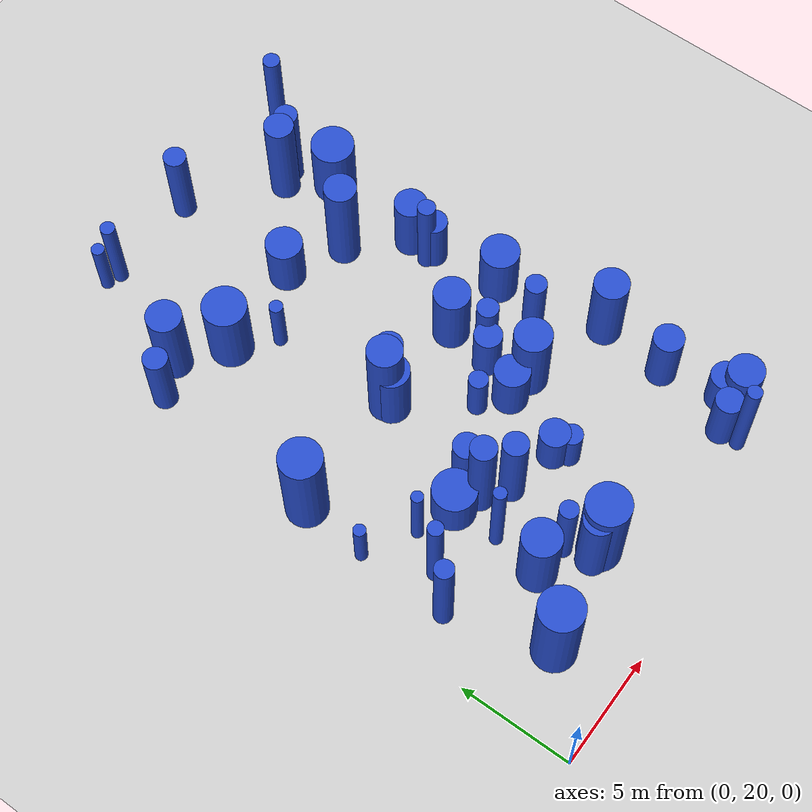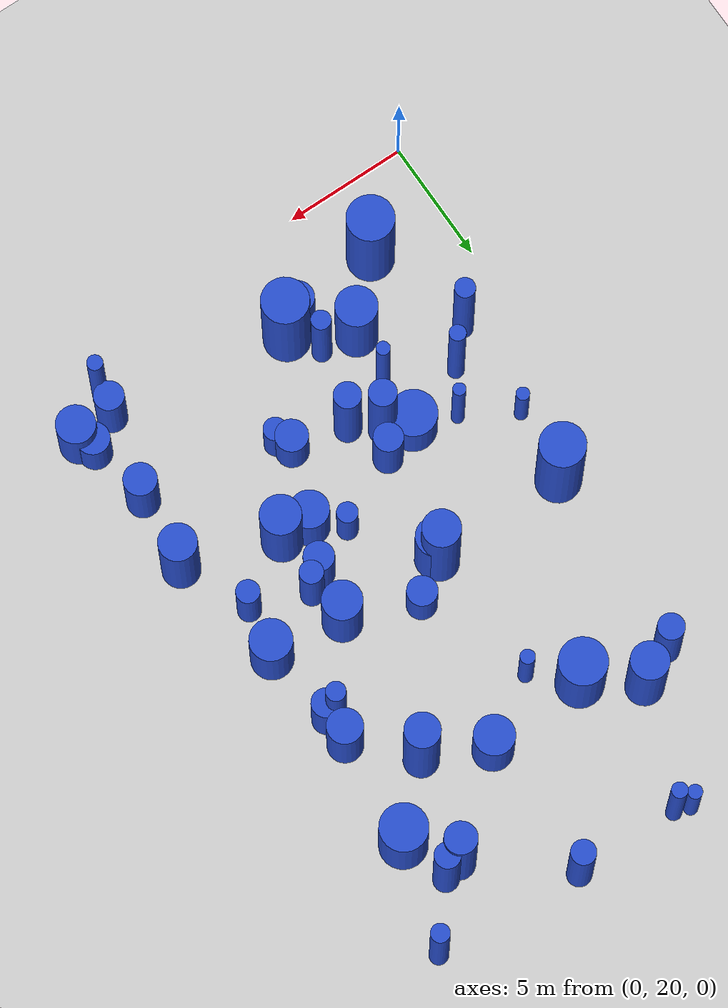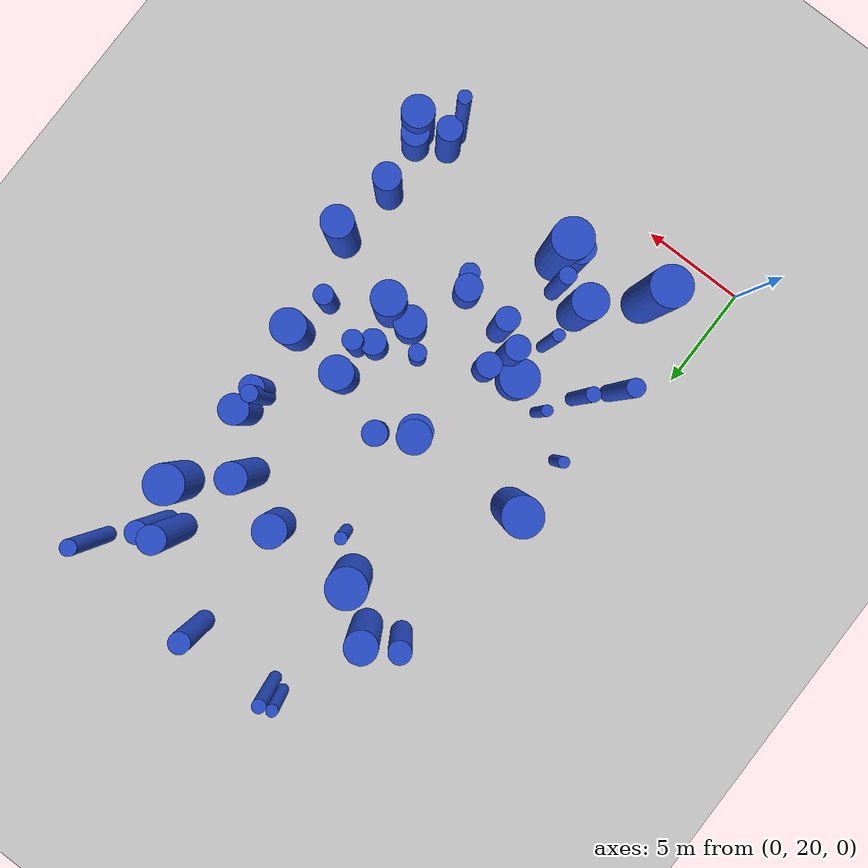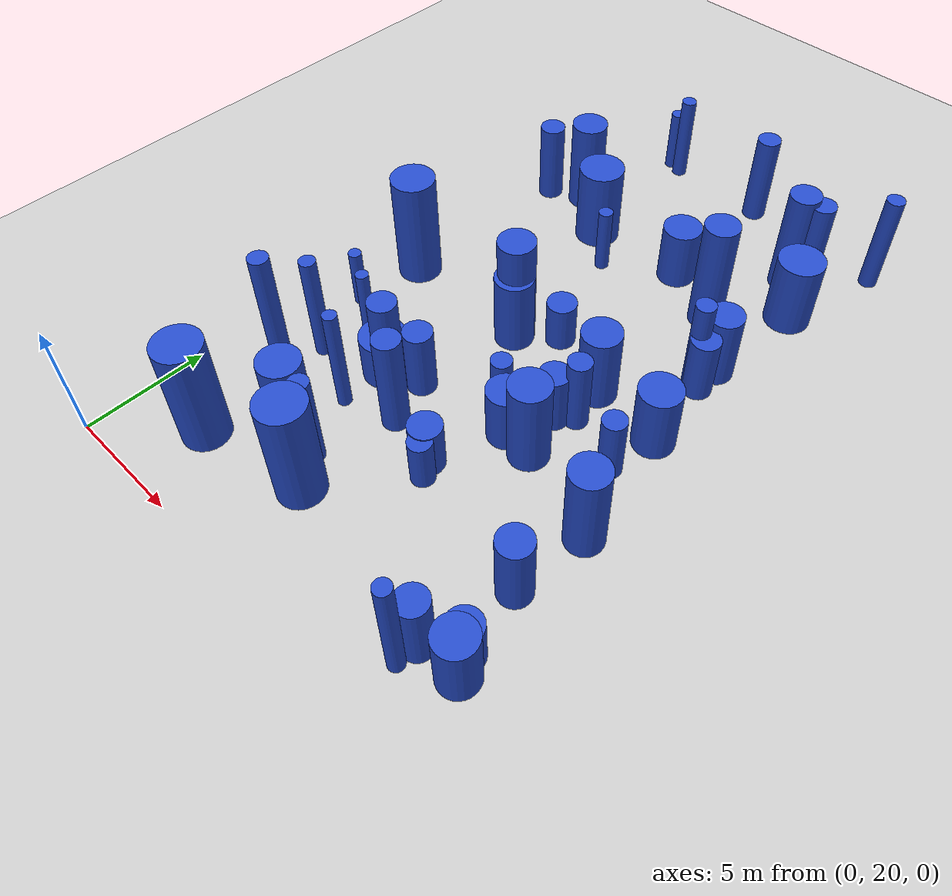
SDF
<sdf version="1.6">
 <world name="default">
  <model name="ground_plane">
   <static>1</static>
   <link name="link">
    <collision name="collision">
     <geometry><plane><normal>0 0 1</normal><size>100 100</size></plane></geometry>
     <surface><friction><ode><mu>100</mu><mu2>50</mu2></ode></friction></surface>
    </collision>
    <visual name="visual">
     <cast_shadows>0</cast_shadows>
     <geometry><plane><normal>0 0 1</normal><size>100 100</size></plane></geometry>
     <material>
      <script><uri>file://media/materials/scripts/gazebo.material</uri><name>Gazebo/Grey</name></script>
     </material>
    </visual>
   </link>
  </model>
  <model name="0">
   <static>0</static>
   <link name="link">
    <inertial>
     <mass>2</mass>
     <inertia><ixx>1.36996</ixx><ixy>0</ixy><ixz>0</ixz><iyy>1.36996</iyy><iyz>0</iyz><izz>0.08114</izz></inertia>
    </inertial>
    <collision name="collision">
     <geometry><cylinder><length>2.82424</length><radius>0.284851</radius></cylinder></geometry>
     <surface><contact><collide_without_contact>1</collide_without_contact></contact></surface>
    </collision>
    <visual name="visual">
     <geometry><cylinder><length>2.82424</length><radius>0.284851</radius></cylinder></geometry>
     <material>
      <script><uri>file://media/materials/scripts/gazebo.material</uri><name>Gazebo/Blue</name></script>
     </material>
    </visual>
    <gravity>0</gravity>
   </link>
   <pose>5.6814 47.6667 1.41212 0 -0 0</pose>
  </model>
  <model name="5">
   <static>0</static>
   <link name="link">
    <inertial>
     <mass>2</mass>
     <inertia><ixx>1.58752</ixx><ixy>0</ixy><ixz>0</ixz><iyy>1.58752</iyy><iyz>0</iyz><izz>0.355159</izz></inertia>
    </inertial>
    <collision name="collision">
     <geometry><cylinder><length>2.90855</length><radius>0.595952</radius></cylinder></geometry>
     <surface><contact><collide_without_contact>1</collide_without_contact></contact></surface>
    </collision>
    <visual name="visual">
     <geometry><cylinder><length>2.90855</length><radius>0.595952</radius></cylinder></geometry>
     <material>
      <script><uri>file://media/materials/scripts/gazebo.material</uri><name>Gazebo/Blue</name></script>
     </material>
    </visual>
    <gravity>0</gravity>
   </link>
   <pose>15.128 22.7537 1.45428 0 -0 0</pose>
  </model>
  <model name="8">
   <static>0</static>
   <link name="link">
    <inertial>
     <mass>2</mass>
     <inertia>
      <ixx>0.880956</ixx>
      <ixy>0</ixy>
      <ixz>0</ixz>
      <iyy>0.880956</iyy>
      <iyz>0</iyz>
      <izz>0.363118</izz>
     </inertia>
    </inertial>
    <collision name="collision">
     <geometry><cylinder><length>2.04851</length><radius>0.602593</radius></cylinder></geometry>
     <surface><contact><collide_without_contact>1</collide_without_contact></contact></surface>
    </collision>
    <visual name="visual">
     <geometry><cylinder><length>2.04851</length><radius>0.602593</radius></cylinder></geometry>
     <material>
      <script><uri>file://media/materials/scripts/gazebo.material</uri><name>Gazebo/Blue</name></script>
     </material>
    </visual>
    <gravity>0</gravity>
   </link>
   <pose>9.53747 35.5063 1.02425 0 -0 0</pose>
  </model>
  <model name="9">
   <static>0</static>
   <link name="link">
    <inertial>
     <mass>2</mass>
     <inertia>
      <ixx>2.25253</ixx>
      <ixy>0</ixy>
      <ixz>0</ixz>
      <iyy>2.25253</iyy>
      <iyz>0</iyz>
      <izz>0.0659071</izz>
     </inertia>
    </inertial>
    <collision name="collision">
     <geometry><cylinder><length>3.64931</length><radius>0.256724</radius></cylinder></geometry>
     <surface><contact><collide_without_contact>1</collide_without_contact></contact></surface>
    </collision>
    <visual name="visual">
     <geometry><cylinder><length>3.64931</length><radius>0.256724</radius></cylinder></geometry>
     <material>
      <script><uri>file://media/materials/scripts/gazebo.material</uri><name>Gazebo/Blue</name></script>
     </material>
    </visual>
    <gravity>0</gravity>
   </link>
   <pose>4.20875 30.1664 1.82465 0 -0 0</pose>
  </model>
  <model name="12">
   <static>0</static>
   <link name="link">
    <inertial>
     <mass>2</mass>
     <inertia>
      <ixx>0.906578</ixx>
      <ixy>0</ixy>
      <ixz>0</ixz>
      <iyy>0.906578</iyy>
      <iyz>0</iyz>
      <izz>0.435424</izz>
     </inertia>
    </inertial>
    <collision name="collision">
     <geometry><cylinder><length>2.03303</length><radius>0.659867</radius></cylinder></geometry>
     <surface><contact><collide_without_contact>1</collide_without_contact></contact></surface>
    </collision>
    <visual name="visual">
     <geometry><cylinder><length>2.03303</length><radius>0.659867</radius></cylinder></geometry>
     <material>
      <script><uri>file://media/materials/scripts/gazebo.material</uri><name>Gazebo/Blue</name></script>
     </material>
    </visual>
    <gravity>0</gravity>
   </link>
   <pose>16.4375 23.5707 1.01651 0 -0 0</pose>
  </model>
  <model name="13">
   <static>0</static>
   <link name="link">
    <inertial>
     <mass>2</mass>
     <inertia><ixx>1.12414</ixx><ixy>0</ixy><ixz>0</ixz><iyy>1.12414</iyy><iyz>0</iyz><izz>0.883734</izz></inertia>
    </inertial>
    <collision name="collision">
     <geometry><cylinder><length>2.02328</length><radius>0.940072</radius></cylinder></geometry>
     <surface><contact><collide_without_contact>1</collide_without_contact></contact></surface>
    </collision>
    <visual name="visual">
     <geometry><cylinder><length>2.02328</length><radius>0.940072</radius></cylinder></geometry>
     <material>
      <script><uri>file://media/materials/scripts/gazebo.material</uri><name>Gazebo/Blue</name></script>
     </material>
    </visual>
    <gravity>0</gravity>
   </link>
   <pose>5.86916 29.5655 1.01164 0 -0 0</pose>
  </model>
  <model name="14">
   <static>0</static>
   <link name="link">
    <inertial>
     <mass>2</mass>
     <inertia><ixx>3.20253</ixx><ixy>0</ixy><ixz>0</ixz><iyy>3.20253</iyy><iyz>0</iyz><izz>0.453423</izz></inertia>
    </inertial>
    <collision name="collision">
     <geometry><cylinder><length>4.22551</length><radius>0.673367</radius></cylinder></geometry>
     <surface><contact><collide_without_contact>1</collide_without_contact></contact></surface>
    </collision>
    <visual name="visual">
     <geometry><cylinder><length>4.22551</length><radius>0.673367</radius></cylinder></geometry>
     <material>
      <script><uri>file://media/materials/scripts/gazebo.material</uri><name>Gazebo/Blue</name></script>
     </material>
    </visual>
    <gravity>0</gravity>
   </link>
   <pose>7.31113 23.8893 2.11276 0 -0 0</pose>
  </model>
  <model name="24">
   <static>0</static>
   <link name="link">
    <inertial>
     <mass>2</mass>
     <inertia><ixx>2.24741</ixx><ixy>0</ixy><ixz>0</ixz><iyy>2.24741</iyy><iyz>0</iyz><izz>0.278521</izz></inertia>
    </inertial>
    <collision name="collision">
     <geometry><cylinder><length>3.55653</length><radius>0.527751</radius></cylinder></geometry>
     <surface><contact><collide_without_contact>1</collide_without_contact></contact></surface>
    </collision>
    <visual name="visual">
     <geometry><cylinder><length>3.55653</length><radius>0.527751</radius></cylinder></geometry>
     <material>
      <script><uri>file://media/materials/scripts/gazebo.material</uri><name>Gazebo/Blue</name></script>
     </material>
    </visual>
    <gravity>0</gravity>
   </link>
   <pose>2.92159 42.1563 1.77827 0 -0 0</pose>
  </model>
  <model name="26">
   <static>0</static>
   <link name="link">
    <inertial>
     <mass>2</mass>
     <inertia><ixx>1.52925</ixx><ixy>0</ixy><ixz>0</ixz><iyy>1.52925</iyy><iyz>0</iyz><izz>0.603809</izz></inertia>
    </inertial>
    <collision name="collision">
     <geometry><cylinder><length>2.71368</length><radius>0.777051</radius></cylinder></geometry>
     <surface><contact><collide_without_contact>1</collide_without_contact></contact></surface>
    </collision>
    <visual name="visual">
     <geometry><cylinder><length>2.71368</length><radius>0.777051</radius></cylinder></geometry>
     <material>
      <script><uri>file://media/materials/scripts/gazebo.material</uri><name>Gazebo/Blue</name></script>
     </material>
    </visual>
    <gravity>0</gravity>
   </link>
   <pose>16.7592 22.9378 1.35684 0 -0 0</pose>
  </model>
  <model name="30">
   <static>0</static>
   <link name="link">
    <inertial>
     <mass>2</mass>
     <inertia><ixx>2.75593</ixx><ixy>0</ixy><ixz>0</ixz><iyy>2.75593</iyy><iyz>0</iyz><izz>0.688056</izz></inertia>
    </inertial>
    <collision name="collision">
     <geometry><cylinder><length>3.80413</length><radius>0.829491</radius></cylinder></geometry>
     <surface><contact><collide_without_contact>1</collide_without_contact></contact></surface>
    </collision>
    <visual name="visual">
     <geometry><cylinder><length>3.80413</length><radius>0.829491</radius></cylinder></geometry>
     <material>
      <script><uri>file://media/materials/scripts/gazebo.material</uri><name>Gazebo/Blue</name></script>
     </material>
    </visual>
    <gravity>0</gravity>
   </link>
   <pose>5.5824 25.3243 1.90206 0 -0 0</pose>
  </model>
  <model name="31">
   <static>0</static>
   <link name="link">
    <inertial>
     <mass>2</mass>
     <inertia><ixx>3.2928</ixx><ixy>0</ixy><ixz>0</ixz><iyy>3.2928</iyy><iyz>0</iyz><izz>0.138663</izz></inertia>
    </inertial>
    <collision name="collision">
     <geometry><cylinder><length>4.39782</length><radius>0.372375</radius></cylinder></geometry>
     <surface><contact><collide_without_contact>1</collide_without_contact></contact></surface>
    </collision>
    <visual name="visual">
     <geometry><cylinder><length>4.39782</length><radius>0.372375</radius></cylinder></geometry>
     <material>
      <script><uri>file://media/materials/scripts/gazebo.material</uri><name>Gazebo/Blue</name></script>
     </material>
    </visual>
    <gravity>0</gravity>
   </link>
   <pose>16.6334 46.9755 2.19891 0 -0 0</pose>
  </model>
  <model name="41">
   <static>0</static>
   <link name="link">
    <inertial>
     <mass>2</mass>
     <inertia>
      <ixx>2.56622</ixx>
      <ixy>0</ixy>
      <ixz>0</ixz>
      <iyy>2.56622</iyy>
      <iyz>0</iyz>
      <izz>0.0997864</izz>
     </inertia>
    </inertial>
    <collision name="collision">
     <geometry><cylinder><length>3.88561</length><radius>0.31589</radius></cylinder></geometry>
     <surface><contact><collide_without_contact>1</collide_without_contact></contact></surface>
    </collision>
    <visual name="visual">
     <geometry><cylinder><length>3.88561</length><radius>0.31589</radius></cylinder></geometry>
     <material>
      <script><uri>file://media/materials/scripts/gazebo.material</uri><name>Gazebo/Blue</name></script>
     </material>
    </visual>
    <gravity>0</gravity>
   </link>
   <pose>6.3063 47.4544 1.9428 0 -0 0</pose>
  </model>
  <model name="42">
   <static>0</static>
   <link name="link">
    <inertial>
     <mass>2</mass>
     <inertia><ixx>1.89672</ixx><ixy>0</ixy><ixz>0</ixz><iyy>1.89672</iyy><iyz>0</iyz><izz>0.219729</izz></inertia>
    </inertial>
    <collision name="collision">
     <geometry><cylinder><length>3.27432</length><radius>0.468753</radius></cylinder></geometry>
     <surface><contact><collide_without_contact>1</collide_without_contact></contact></surface>
    </collision>
    <visual name="visual">
     <geometry><cylinder><length>3.27432</length><radius>0.468753</radius></cylinder></geometry>
     <material>
      <script><uri>file://media/materials/scripts/gazebo.material</uri><name>Gazebo/Blue</name></script>
     </material>
    </visual>
    <gravity>0</gravity>
   </link>
   <pose>12.7332 32.8428 1.63716 0 -0 0</pose>
  </model>
  <model name="49">
   <static>0</static>
   <link name="link">
    <inertial>
     <mass>2</mass>
     <inertia><ixx>2.81765</ixx><ixy>0</ixy><ixz>0</ixz><iyy>2.81765</iyy><iyz>0</iyz><izz>0.156137</izz></inertia>
    </inertial>
    <collision name="collision">
     <geometry><cylinder><length>4.05431</length><radius>0.395141</radius></cylinder></geometry>
     <surface><contact><collide_without_contact>1</collide_without_contact></contact></surface>
    </collision>
    <visual name="visual">
     <geometry><cylinder><length>4.05431</length><radius>0.395141</radius></cylinder></geometry>
     <material>
      <script><uri>file://media/materials/scripts/gazebo.material</uri><name>Gazebo/Blue</name></script>
     </material>
    </visual>
    <gravity>0</gravity>
   </link>
   <pose>7.03901 25.0928 2.02716 0 -0 0</pose>
  </model>
  <model name="62">
   <static>0</static>
   <link name="link">
    <inertial>
     <mass>2</mass>
     <inertia><ixx>2.09933</ixx><ixy>0</ixy><ixz>0</ixz><iyy>2.09933</iyy><iyz>0</iyz><izz>0.629499</izz></inertia>
    </inertial>
    <collision name="collision">
     <geometry><cylinder><length>3.27223</length><radius>0.79341</radius></cylinder></geometry>
     <surface><contact><collide_without_contact>1</collide_without_contact></contact></surface>
    </collision>
    <visual name="visual">
     <geometry><cylinder><length>3.27223</length><radius>0.79341</radius></cylinder></geometry>
     <material>
      <script><uri>file://media/materials/scripts/gazebo.material</uri><name>Gazebo/Blue</name></script>
     </material>
    </visual>
    <gravity>0</gravity>
   </link>
   <pose>8.11835 34.326 1.63611 0 -0 0</pose>
  </model>
  <model name="63">
   <static>0</static>
   <link name="link">
    <inertial>
     <mass>2</mass>
     <inertia><ixx>1.33081</ixx><ixy>0</ixy><ixz>0</ixz><iyy>1.33081</iyy><iyz>0</iyz><izz>0.586422</izz></inertia>
    </inertial>
    <collision name="collision">
     <geometry><cylinder><length>2.49512</length><radius>0.765782</radius></cylinder></geometry>
     <surface><contact><collide_without_contact>1</collide_without_contact></contact></surface>
    </collision>
    <visual name="visual">
     <geometry><cylinder><length>2.49512</length><radius>0.765782</radius></cylinder></geometry>
     <material>
      <script><uri>file://media/materials/scripts/gazebo.material</uri><name>Gazebo/Blue</name></script>
     </material>
    </visual>
    <gravity>0</gravity>
   </link>
   <pose>11.3127 30.6031 1.24756 0 -0 0</pose>
  </model>
  <model name="64">
   <static>0</static>
   <link name="link">
    <inertial>
     <mass>2</mass>
     <inertia><ixx>3.78361</ixx><ixy>0</ixy><ixz>0</ixz><iyy>3.78361</iyy><iyz>0</iyz><izz>0.408646</izz></inertia>
    </inertial>
    <collision name="collision">
     <geometry><cylinder><length>4.63419</length><radius>0.639254</radius></cylinder></geometry>
     <surface><contact><collide_without_contact>1</collide_without_contact></contact></surface>
    </collision>
    <visual name="visual">
     <geometry><cylinder><length>4.63419</length><radius>0.639254</radius></cylinder></geometry>
     <material>
      <script><uri>file://media/materials/scripts/gazebo.material</uri><name>Gazebo/Blue</name></script>
     </material>
    </visual>
    <gravity>0</gravity>
   </link>
   <pose>14.0493 44.533 2.3171 0 -0 0</pose>
  </model>
  <model name="67">
   <static>0</static>
   <link name="link">
    <inertial>
     <mass>2</mass>
     <inertia>
      <ixx>3.75821</ixx>
      <ixy>0</ixy>
      <ixz>0</ixz>
      <iyy>3.75821</iyy>
      <iyz>0</iyz>
      <izz>0.0983354</izz>
     </inertia>
    </inertial>
    <collision name="collision">
     <geometry><cylinder><length>4.71744</length><radius>0.313585</radius></cylinder></geometry>
     <surface><contact><collide_without_contact>1</collide_without_contact></contact></surface>
    </collision>
    <visual name="visual">
     <geometry><cylinder><length>4.71744</length><radius>0.313585</radius></cylinder></geometry>
     <material>
      <script><uri>file://media/materials/scripts/gazebo.material</uri><name>Gazebo/Blue</name></script>
     </material>
    </visual>
    <gravity>0</gravity>
   </link>
   <pose>15.0789 21.9009 2.35872 0 -0 0</pose>
  </model>
  <model name="81">
   <static>0</static>
   <link name="link">
    <inertial>
     <mass>2</mass>
     <inertia><ixx>1.76356</ixx><ixy>0</ixy><ixz>0</ixz><iyy>1.76356</iyy><iyz>0</iyz><izz>0.697005</izz></inertia>
    </inertial>
    <collision name="collision">
     <geometry><cylinder><length>2.91382</length><radius>0.834868</radius></cylinder></geometry>
     <surface><contact><collide_without_contact>1</collide_without_contact></contact></surface>
    </collision>
    <visual name="visual">
     <geometry><cylinder><length>2.91382</length><radius>0.834868</radius></cylinder></geometry>
     <material>
      <script><uri>file://media/materials/scripts/gazebo.material</uri><name>Gazebo/Blue</name></script>
     </material>
    </visual>
    <gravity>0</gravity>
   </link>
   <pose>15.3903 34.0744 1.45691 0 -0 0</pose>
  </model>
  <model name="85">
   <static>0</static>
   <link name="link">
    <inertial>
     <mass>2</mass>
     <inertia><ixx>4.17735</ixx><ixy>0</ixy><ixz>0</ixz><iyy>4.17735</iyy><iyz>0</iyz><izz>0.305163</izz></inertia>
    </inertial>
    <collision name="collision">
     <geometry><cylinder><length>4.91412</length><radius>0.552415</radius></cylinder></geometry>
     <surface><contact><collide_without_contact>1</collide_without_contact></contact></surface>
    </collision>
    <visual name="visual">
     <geometry><cylinder><length>4.91412</length><radius>0.552415</radius></cylinder></geometry>
     <material>
      <script><uri>file://media/materials/scripts/gazebo.material</uri><name>Gazebo/Blue</name></script>
     </material>
    </visual>
    <gravity>0</gravity>
   </link>
   <pose>6.88431 28.9828 2.45706 0 -0 0</pose>
  </model>
  <model name="87">
   <static>0</static>
   <link name="link">
    <inertial>
     <mass>2</mass>
     <inertia><ixx>4.14558</ixx><ixy>0</ixy><ixz>0</ixz><iyy>4.14558</iyy><iyz>0</iyz><izz>0.875717</izz></inertia>
    </inertial>
    <collision name="collision">
     <geometry><cylinder><length>4.7166</length><radius>0.935798</radius></cylinder></geometry>
     <surface><contact><collide_without_contact>1</collide_without_contact></contact></surface>
    </collision>
    <visual name="visual">
     <geometry><cylinder><length>4.7166</length><radius>0.935798</radius></cylinder></geometry>
     <material>
      <script><uri>file://media/materials/scripts/gazebo.material</uri><name>Gazebo/Blue</name></script>
     </material>
    </visual>
    <gravity>0</gravity>
   </link>
   <pose>7.8366 23.8834 2.3583 0 -0 0</pose>
  </model>
  <model name="94">
   <static>0</static>
   <link name="link">
    <inertial>
     <mass>2</mass>
     <inertia><ixx>1.88089</ixx><ixy>0</ixy><ixz>0</ixz><iyy>1.88089</iyy><iyz>0</iyz><izz>0.49442</izz></inertia>
    </inertial>
    <collision name="collision">
     <geometry><cylinder><length>3.13082</length><radius>0.70315</radius></cylinder></geometry>
     <surface><contact><collide_without_contact>1</collide_without_contact></contact></surface>
    </collision>
    <visual name="visual">
     <geometry><cylinder><length>3.13082</length><radius>0.70315</radius></cylinder></geometry>
     <material>
      <script><uri>file://media/materials/scripts/gazebo.material</uri><name>Gazebo/Blue</name></script>
     </material>
    </visual>
    <gravity>0</gravity>
   </link>
   <pose>14.9938 38.388 1.56541 0 -0 0</pose>
  </model>
  <model name="99">
   <static>0</static>
   <link name="link">
    <inertial>
     <mass>2</mass>
     <inertia><ixx>4.30675</ixx><ixy>0</ixy><ixz>0</ixz><iyy>4.30675</iyy><iyz>0</iyz><izz>0.822599</izz></inertia>
    </inertial>
    <collision name="collision">
     <geometry><cylinder><length>4.83453</length><radius>0.906973</radius></cylinder></geometry>
     <surface><contact><collide_without_contact>1</collide_without_contact></contact></surface>
    </collision>
    <visual name="visual">
     <geometry><cylinder><length>4.83453</length><radius>0.906973</radius></cylinder></geometry>
     <material>
      <script><uri>file://media/materials/scripts/gazebo.material</uri><name>Gazebo/Blue</name></script>
     </material>
    </visual>
    <gravity>0</gravity>
   </link>
   <pose>2.47477 34.3983 2.41727 0 -0 0</pose>
  </model>
  <model name="103">
   <static>0</static>
   <link name="link">
    <inertial>
     <mass>2</mass>
     <inertia>
      <ixx>0.968842</ixx>
      <ixy>0</ixy>
      <ixz>0</ixz>
      <iyy>0.968842</iyy>
      <iyz>0</iyz>
      <izz>0.42879</izz>
     </inertia>
    </inertial>
    <collision name="collision">
     <geometry><cylinder><length>2.1276</length><radius>0.654821</radius></cylinder></geometry>
     <surface><contact><collide_without_contact>1</collide_without_contact></contact></surface>
    </collision>
    <visual name="visual">
     <geometry><cylinder><length>2.1276</length><radius>0.654821</radius></cylinder></geometry>
     <material>
      <script><uri>file://media/materials/scripts/gazebo.material</uri><name>Gazebo/Blue</name></script>
     </material>
    </visual>
    <gravity>0</gravity>
   </link>
   <pose>10.1947 27.7329 1.0638 0 -0 0</pose>
  </model>
  <model name="106">
   <static>0</static>
   <link name="link">
    <inertial>
     <mass>2</mass>
     <inertia><ixx>1.79502</ixx><ixy>0</ixy><ixz>0</ixz><iyy>1.79502</iyy><iyz>0</iyz><izz>0.432629</izz></inertia>
    </inertial>
    <collision name="collision">
     <geometry><cylinder><length>3.0777</length><radius>0.657746</radius></cylinder></geometry>
     <surface><contact><collide_without_contact>1</collide_without_contact></contact></surface>
    </collision>
    <visual name="visual">
     <geometry><cylinder><length>3.0777</length><radius>0.657746</radius></cylinder></geometry>
     <material>
      <script><uri>file://media/materials/scripts/gazebo.material</uri><name>Gazebo/Blue</name></script>
     </material>
    </visual>
    <gravity>0</gravity>
   </link>
   <pose>15.9875 26.1954 1.53885 0 -0 0</pose>
  </model>
  <model name="110">
   <static>0</static>
   <link name="link">
    <inertial>
     <mass>2</mass>
     <inertia><ixx>1.24854</ixx><ixy>0</ixy><ixz>0</ixz><iyy>1.24854</iyy><iyz>0</iyz><izz>0.366607</izz></inertia>
    </inertial>
    <collision name="collision">
     <geometry><cylinder><length>2.52813</length><radius>0.605481</radius></cylinder></geometry>
     <surface><contact><collide_without_contact>1</collide_without_contact></contact></surface>
    </collision>
    <visual name="visual">
     <geometry><cylinder><length>2.52813</length><radius>0.605481</radius></cylinder></geometry>
     <material>
      <script><uri>file://media/materials/scripts/gazebo.material</uri><name>Gazebo/Blue</name></script>
     </material>
    </visual>
    <gravity>0</gravity>
   </link>
   <pose>12.0545 32.3225 1.26406 0 -0 0</pose>
  </model>
  <model name="117">
   <static>0</static>
   <link name="link">
    <inertial>
     <mass>2</mass>
     <inertia><ixx>4.22682</ixx><ixy>0</ixy><ixz>0</ixz><iyy>4.22682</iyy><iyz>0</iyz><izz>0.563313</izz></inertia>
    </inertial>
    <collision name="collision">
     <geometry><cylinder><length>4.86528</length><radius>0.750542</radius></cylinder></geometry>
     <surface><contact><collide_without_contact>1</collide_without_contact></contact></surface>
    </collision>
    <visual name="visual">
     <geometry><cylinder><length>4.86528</length><radius>0.750542</radius></cylinder></geometry>
     <material>
      <script><uri>file://media/materials/scripts/gazebo.material</uri><name>Gazebo/Blue</name></script>
     </material>
    </visual>
    <gravity>0</gravity>
   </link>
   <pose>8.03229 34.5318 2.43264 0 -0 0</pose>
  </model>
  <model name="127">
   <static>0</static>
   <link name="link">
    <inertial>
     <mass>2</mass>
     <inertia><ixx>4.23496</ixx><ixy>0</ixy><ixz>0</ixz><iyy>4.23496</iyy><iyz>0</iyz><izz>0.880403</izz></inertia>
    </inertial>
    <collision name="collision">
     <geometry><cylinder><length>4.77164</length><radius>0.938298</radius></cylinder></geometry>
     <surface><contact><collide_without_contact>1</collide_without_contact></contact></surface>
    </collision>
    <visual name="visual">
     <geometry><cylinder><length>4.77164</length><radius>0.938298</radius></cylinder></geometry>
     <material>
      <script><uri>file://media/materials/scripts/gazebo.material</uri><name>Gazebo/Blue</name></script>
     </material>
    </visual>
    <gravity>0</gravity>
   </link>
   <pose>3.3551 22.9957 2.38582 0 -0 0</pose>
  </model>
  <model name="136">
   <static>0</static>
   <link name="link">
    <inertial>
     <mass>2</mass>
     <inertia><ixx>2.16121</ixx><ixy>0</ixy><ixz>0</ixz><iyy>2.16121</iyy><iyz>0</iyz><izz>0.621583</izz></inertia>
    </inertial>
    <collision name="collision">
     <geometry><cylinder><length>3.33205</length><radius>0.788405</radius></cylinder></geometry>
     <surface><contact><collide_without_contact>1</collide_without_contact></contact></surface>
    </collision>
    <visual name="visual">
     <geometry><cylinder><length>3.33205</length><radius>0.788405</radius></cylinder></geometry>
     <material>
      <script><uri>file://media/materials/scripts/gazebo.material</uri><name>Gazebo/Blue</name></script>
     </material>
    </visual>
    <gravity>0</gravity>
   </link>
   <pose>12.4031 34.3974 1.66602 0 -0 0</pose>
  </model>
  <model name="137">
   <static>0</static>
   <link name="link">
    <inertial>
     <mass>2</mass>
     <inertia><ixx>2.99211</ixx><ixy>0</ixy><ixz>0</ixz><iyy>2.99211</iyy><iyz>0</iyz><izz>0.151954</izz></inertia>
    </inertial>
    <collision name="collision">
     <geometry><cylinder><length>4.18292</length><radius>0.389813</radius></cylinder></geometry>
     <surface><contact><collide_without_contact>1</collide_without_contact></contact></surface>
    </collision>
    <visual name="visual">
     <geometry><cylinder><length>4.18292</length><radius>0.389813</radius></cylinder></geometry>
     <material>
      <script><uri>file://media/materials/scripts/gazebo.material</uri><name>Gazebo/Blue</name></script>
     </material>
    </visual>
    <gravity>0</gravity>
   </link>
   <pose>14.6703 37.3275 2.09146 0 -0 0</pose>
  </model>
  <model name="141">
   <static>0</static>
   <link name="link">
    <inertial>
     <mass>2</mass>
     <inertia>
      <ixx>0.831052</ixx>
      <ixy>0</ixy>
      <ixz>0</ixz>
      <iyy>0.831052</iyy>
      <iyz>0</iyz>
      <izz>0.221079</izz>
     </inertia>
    </inertial>
    <collision name="collision">
     <geometry><cylinder><length>2.0792</length><radius>0.470191</radius></cylinder></geometry>
     <surface><contact><collide_without_contact>1</collide_without_contact></contact></surface>
    </collision>
    <visual name="visual">
     <geometry><cylinder><length>2.0792</length><radius>0.470191</radius></cylinder></geometry>
     <material>
      <script><uri>file://media/materials/scripts/gazebo.material</uri><name>Gazebo/Blue</name></script>
     </material>
    </visual>
    <gravity>0</gravity>
   </link>
   <pose>10.5526 27.1609 1.0396 0 -0 0</pose>
  </model>
  <model name="148">
   <static>0</static>
   <link name="link">
    <inertial>
     <mass>2</mass>
     <inertia><ixx>1.09263</ixx><ixy>0</ixy><ixz>0</ixz><iyy>1.09263</iyy><iyz>0</iyz><izz>0.174994</izz></inertia>
    </inertial>
    <collision name="collision">
     <geometry><cylinder><length>2.45577</length><radius>0.418322</radius></cylinder></geometry>
     <surface><contact><collide_without_contact>1</collide_without_contact></contact></surface>
    </collision>
    <visual name="visual">
     <geometry><cylinder><length>2.45577</length><radius>0.418322</radius></cylinder></geometry>
     <material>
      <script><uri>file://media/materials/scripts/gazebo.material</uri><name>Gazebo/Blue</name></script>
     </material>
    </visual>
    <gravity>0</gravity>
   </link>
   <pose>10.2028 31.4946 1.22788 0 -0 0</pose>
  </model>
  <model name="156">
   <static>0</static>
   <link name="link">
    <inertial>
     <mass>2</mass>
     <inertia><ixx>2.79341</ixx><ixy>0</ixy><ixz>0</ixz><iyy>2.79341</iyy><iyz>0</iyz><izz>0.240916</izz></inertia>
    </inertial>
    <collision name="collision">
     <geometry><cylinder><length>4.00471</length><radius>0.490832</radius></cylinder></geometry>
     <surface><contact><collide_without_contact>1</collide_without_contact></contact></surface>
    </collision>
    <visual name="visual">
     <geometry><cylinder><length>4.00471</length><radius>0.490832</radius></cylinder></geometry>
     <material>
      <script><uri>file://media/materials/scripts/gazebo.material</uri><name>Gazebo/Blue</name></script>
     </material>
    </visual>
    <gravity>0</gravity>
   </link>
   <pose>10.5676 47.3916 2.00235 0 -0 0</pose>
  </model>
  <model name="158">
   <static>0</static>
   <link name="link">
    <inertial>
     <mass>2</mass>
     <inertia><ixx>4.17302</ixx><ixy>0</ixy><ixz>0</ixz><iyy>4.17302</iyy><iyz>0</iyz><izz>0.165975</izz></inertia>
    </inertial>
    <collision name="collision">
     <geometry><cylinder><length>4.95381</length><radius>0.4074</radius></cylinder></geometry>
     <surface><contact><collide_without_contact>1</collide_without_contact></contact></surface>
    </collision>
    <visual name="visual">
     <geometry><cylinder><length>4.95381</length><radius>0.4074</radius></cylinder></geometry>
     <material>
      <script><uri>file://media/materials/scripts/gazebo.material</uri><name>Gazebo/Blue</name></script>
     </material>
    </visual>
    <gravity>0</gravity>
   </link>
   <pose>2.01735 27.3295 2.4769 0 -0 0</pose>
  </model>
  <model name="160">
   <static>0</static>
   <link name="link">
    <inertial>
     <mass>2</mass>
     <inertia>
      <ixx>1.44279</ixx>
      <ixy>0</ixy>
      <ixz>0</ixz>
      <iyy>1.44279</iyy>
      <iyz>0</iyz>
      <izz>0.0869253</izz>
     </inertia>
    </inertial>
    <collision name="collision">
     <geometry><cylinder><length>2.89758</length><radius>0.294831</radius></cylinder></geometry>
     <surface><contact><collide_without_contact>1</collide_without_contact></contact></surface>
    </collision>
    <visual name="visual">
     <geometry><cylinder><length>2.89758</length><radius>0.294831</radius></cylinder></geometry>
     <material>
      <script><uri>file://media/materials/scripts/gazebo.material</uri><name>Gazebo/Blue</name></script>
     </material>
    </visual>
    <gravity>0</gravity>
   </link>
   <pose>7.86873 39.9815 1.44879 0 -0 0</pose>
  </model>
  <model name="170">
   <static>0</static>
   <link name="link">
    <inertial>
     <mass>2</mass>
     <inertia><ixx>2.13715</ixx><ixy>0</ixy><ixz>0</ixz><iyy>2.13715</iyy><iyz>0</iyz><izz>0.87674</izz></inertia>
    </inertial>
    <collision name="collision">
     <geometry><cylinder><length>3.1926</length><radius>0.936344</radius></cylinder></geometry>
     <surface><contact><collide_without_contact>1</collide_without_contact></contact></surface>
    </collision>
    <visual name="visual">
     <geometry><cylinder><length>3.1926</length><radius>0.936344</radius></cylinder></geometry>
     <material>
      <script><uri>file://media/materials/scripts/gazebo.material</uri><name>Gazebo/Blue</name></script>
     </material>
    </visual>
    <gravity>0</gravity>
   </link>
   <pose>15.3632 42.7831 1.5963 0 -0 0</pose>
  </model>
  <model name="181">
   <static>0</static>
   <link name="link">
    <inertial>
     <mass>2</mass>
     <inertia><ixx>3.41972</ixx><ixy>0</ixy><ixz>0</ixz><iyy>3.41972</iyy><iyz>0</iyz><izz>0.29381</izz></inertia>
    </inertial>
    <collision name="collision">
     <geometry><cylinder><length>4.43136</length><radius>0.542042</radius></cylinder></geometry>
     <surface><contact><collide_without_contact>1</collide_without_contact></contact></surface>
    </collision>
    <visual name="visual">
     <geometry><cylinder><length>4.43136</length><radius>0.542042</radius></cylinder></geometry>
     <material>
      <script><uri>file://media/materials/scripts/gazebo.material</uri><name>Gazebo/Blue</name></script>
     </material>
    </visual>
    <gravity>0</gravity>
   </link>
   <pose>7.94323 28.1987 2.21568 0 -0 0</pose>
  </model>
  <model name="193">
   <static>0</static>
   <link name="link">
    <inertial>
     <mass>2</mass>
     <inertia><ixx>3.33697</ixx><ixy>0</ixy><ixz>0</ixz><iyy>3.33697</iyy><iyz>0</iyz><izz>0.257203</izz></inertia>
    </inertial>
    <collision name="collision">
     <geometry><cylinder><length>4.38751</length><radius>0.507152</radius></cylinder></geometry>
     <surface><contact><collide_without_contact>1</collide_without_contact></contact></surface>
    </collision>
    <visual name="visual">
     <geometry><cylinder><length>4.38751</length><radius>0.507152</radius></cylinder></geometry>
     <material>
      <script><uri>file://media/materials/scripts/gazebo.material</uri><name>Gazebo/Blue</name></script>
     </material>
    </visual>
    <gravity>0</gravity>
   </link>
   <pose>14.7852 44.7538 2.19375 0 -0 0</pose>
  </model>
  <model name="198">
   <static>0</static>
   <link name="link">
    <inertial>
     <mass>2</mass>
     <inertia><ixx>1.40641</ixx><ixy>0</ixy><ixz>0</ixz><iyy>1.40641</iyy><iyz>0</iyz><izz>0.219286</izz></inertia>
    </inertial>
    <collision name="collision">
     <geometry><cylinder><length>2.78937</length><radius>0.46828</radius></cylinder></geometry>
     <surface><contact><collide_without_contact>1</collide_without_contact></contact></surface>
    </collision>
    <visual name="visual">
     <geometry><cylinder><length>2.78937</length><radius>0.46828</radius></cylinder></geometry>
     <material>
      <script><uri>file://media/materials/scripts/gazebo.material</uri><name>Gazebo/Blue</name></script>
     </material>
    </visual>
    <gravity>0</gravity>
   </link>
   <pose>15.0438 32.0205 1.39468 0 -0 0</pose>
  </model>
  <model name="205">
   <static>0</static>
   <link name="link">
    <inertial>
     <mass>2</mass>
     <inertia><ixx>4.28691</ixx><ixy>0</ixy><ixz>0</ixz><iyy>4.28691</iyy><iyz>0</iyz><izz>0.485464</izz></inertia>
    </inertial>
    <collision name="collision">
     <geometry><cylinder><length>4.92596</length><radius>0.696752</radius></cylinder></geometry>
     <surface><contact><collide_without_contact>1</collide_without_contact></contact></surface>
    </collision>
    <visual name="visual">
     <geometry><cylinder><length>4.92596</length><radius>0.696752</radius></cylinder></geometry>
     <material>
      <script><uri>file://media/materials/scripts/gazebo.material</uri><name>Gazebo/Blue</name></script>
     </material>
    </visual>
    <gravity>0</gravity>
   </link>
   <pose>12.9684 40.475 2.46298 0 -0 0</pose>
  </model>
  <model name="207">
   <static>0</static>
   <link name="link">
    <inertial>
     <mass>2</mass>
     <inertia><ixx>2.7846</ixx><ixy>0</ixy><ixz>0</ixz><iyy>2.7846</iyy><iyz>0</iyz><izz>0.647646</izz></inertia>
    </inertial>
    <collision name="collision">
     <geometry><cylinder><length>3.84248</length><radius>0.804765</radius></cylinder></geometry>
     <surface><contact><collide_without_contact>1</collide_without_contact></contact></surface>
    </collision>
    <visual name="visual">
     <geometry><cylinder><length>3.84248</length><radius>0.804765</radius></cylinder></geometry>
     <material>
      <script><uri>file://media/materials/scripts/gazebo.material</uri><name>Gazebo/Blue</name></script>
     </material>
    </visual>
    <gravity>0</gravity>
   </link>
   <pose>12.5267 30.4966 1.92124 0 -0 0</pose>
  </model>
  <model name="208">
   <static>0</static>
   <link name="link">
    <inertial>
     <mass>2</mass>
     <inertia><ixx>1.16211</ixx><ixy>0</ixy><ixz>0</ixz><iyy>1.16211</iyy><iyz>0</iyz><izz>0.071987</izz></inertia>
    </inertial>
    <collision name="collision">
     <geometry><cylinder><length>2.59936</length><radius>0.268304</radius></cylinder></geometry>
     <surface><contact><collide_without_contact>1</collide_without_contact></contact></surface>
    </collision>
    <visual name="visual">
     <geometry><cylinder><length>2.59936</length><radius>0.268304</radius></cylinder></geometry>
     <material>
      <script><uri>file://media/materials/scripts/gazebo.material</uri><name>Gazebo/Blue</name></script>
     </material>
    </visual>
    <gravity>0</gravity>
   </link>
   <pose>2.12682 31.4104 1.29968 0 -0 0</pose>
  </model>
  <model name="212">
   <static>0</static>
   <link name="link">
    <inertial>
     <mass>2</mass>
     <inertia><ixx>1.47331</ixx><ixy>0</ixy><ixz>0</ixz><iyy>1.47331</iyy><iyz>0</iyz><izz>0.638494</izz></inertia>
    </inertial>
    <collision name="collision">
     <geometry><cylinder><length>2.63142</length><radius>0.799058</radius></cylinder></geometry>
     <surface><contact><collide_without_contact>1</collide_without_contact></contact></surface>
    </collision>
    <visual name="visual">
     <geometry><cylinder><length>2.63142</length><radius>0.799058</radius></cylinder></geometry>
     <material>
      <script><uri>file://media/materials/scripts/gazebo.material</uri><name>Gazebo/Blue</name></script>
     </material>
    </visual>
    <gravity>0</gravity>
   </link>
   <pose>10.5465 41.6959 1.31571 0 -0 0</pose>
  </model>
  <model name="216">
   <static>0</static>
   <link name="link">
    <inertial>
     <mass>2</mass>
     <inertia><ixx>3.05983</ixx><ixy>0</ixy><ixz>0</ixz><iyy>3.05983</iyy><iyz>0</iyz><izz>0.567114</izz></inertia>
    </inertial>
    <collision name="collision">
     <geometry><cylinder><length>4.08138</length><radius>0.753069</radius></cylinder></geometry>
     <surface><contact><collide_without_contact>1</collide_without_contact></contact></surface>
    </collision>
    <visual name="visual">
     <geometry><cylinder><length>4.08138</length><radius>0.753069</radius></cylinder></geometry>
     <material>
      <script><uri>file://media/materials/scripts/gazebo.material</uri><name>Gazebo/Blue</name></script>
     </material>
    </visual>
    <gravity>0</gravity>
   </link>
   <pose>4.41696 42.8697 2.04069 0 -0 0</pose>
  </model>
  <model name="218">
   <static>0</static>
   <link name="link">
    <inertial>
     <mass>2</mass>
     <inertia><ixx>2.57473</ixx><ixy>0</ixy><ixz>0</ixz><iyy>2.57473</iyy><iyz>0</iyz><izz>0.894473</izz></inertia>
    </inertial>
    <collision name="collision">
     <geometry><cylinder><length>3.57281</length><radius>0.945766</radius></cylinder></geometry>
     <surface><contact><collide_without_contact>1</collide_without_contact></contact></surface>
    </collision>
    <visual name="visual">
     <geometry><cylinder><length>3.57281</length><radius>0.945766</radius></cylinder></geometry>
     <material>
      <script><uri>file://media/materials/scripts/gazebo.material</uri><name>Gazebo/Blue</name></script>
     </material>
    </visual>
    <gravity>0</gravity>
   </link>
   <pose>6.38048 41.4124 1.7864 0 -0 0</pose>
  </model>
  <model name="219">
   <static>0</static>
   <link name="link">
    <inertial>
     <mass>2</mass>
     <inertia>
      <ixx>3.59436</ixx>
      <ixy>0</ixy>
      <ixz>0</ixz>
      <iyy>3.59436</iyy>
      <iyz>0</iyz>
      <izz>0.0774446</izz>
     </inertia>
    </inertial>
    <collision name="collision">
     <geometry><cylinder><length>4.61885</length><radius>0.278289</radius></cylinder></geometry>
     <surface><contact><collide_without_contact>1</collide_without_contact></contact></surface>
    </collision>
    <visual name="visual">
     <geometry><cylinder><length>4.61885</length><radius>0.278289</radius></cylinder></geometry>
     <material>
      <script><uri>file://media/materials/scripts/gazebo.material</uri><name>Gazebo/Blue</name></script>
     </material>
    </visual>
    <gravity>0</gravity>
   </link>
   <pose>5.8375 27.4771 2.30943 0 -0 0</pose>
  </model>
  <model name="228">
   <static>0</static>
   <link name="link">
    <inertial>
     <mass>2</mass>
     <inertia><ixx>3.78381</ixx><ixy>0</ixy><ixz>0</ixz><iyy>3.78381</iyy><iyz>0</iyz><izz>0.108719</izz></inertia>
    </inertial>
    <collision name="collision">
     <geometry><cylinder><length>4.7304</length><radius>0.329726</radius></cylinder></geometry>
     <surface><contact><collide_without_contact>1</collide_without_contact></contact></surface>
    </collision>
    <visual name="visual">
     <geometry><cylinder><length>4.7304</length><radius>0.329726</radius></cylinder></geometry>
     <material>
      <script><uri>file://media/materials/scripts/gazebo.material</uri><name>Gazebo/Blue</name></script>
     </material>
    </visual>
    <gravity>0</gravity>
   </link>
   <pose>3.21008 28.5835 2.3652 0 -0 0</pose>
  </model>
  <model name="230">
   <static>0</static>
   <link name="link">
    <inertial>
     <mass>2</mass>
     <inertia><ixx>1.43272</ixx><ixy>0</ixy><ixz>0</ixz><iyy>1.43272</iyy><iyz>0</iyz><izz>0.334677</izz></inertia>
    </inertial>
    <collision name="collision">
     <geometry><cylinder><length>2.75541</length><radius>0.578513</radius></cylinder></geometry>
     <surface><contact><collide_without_contact>1</collide_without_contact></contact></surface>
    </collision>
    <visual name="visual">
     <geometry><cylinder><length>2.75541</length><radius>0.578513</radius></cylinder></geometry>
     <material>
      <script><uri>file://media/materials/scripts/gazebo.material</uri><name>Gazebo/Blue</name></script>
     </material>
    </visual>
    <gravity>0</gravity>
   </link>
   <pose>15.022 37.1932 1.3777 0 -0 0</pose>
  </model>
  <model name="236">
   <static>0</static>
   <link name="link">
    <inertial>
     <mass>2</mass>
     <inertia><ixx>1.62333</ixx><ixy>0</ixy><ixz>0</ixz><iyy>1.62333</iyy><iyz>0</iyz><izz>0.346432</izz></inertia>
    </inertial>
    <collision name="collision">
     <geometry><cylinder><length>2.94969</length><radius>0.588585</radius></cylinder></geometry>
     <surface><contact><collide_without_contact>1</collide_without_contact></contact></surface>
    </collision>
    <visual name="visual">
     <geometry><cylinder><length>2.94969</length><radius>0.588585</radius></cylinder></geometry>
     <material>
      <script><uri>file://media/materials/scripts/gazebo.material</uri><name>Gazebo/Blue</name></script>
     </material>
    </visual>
    <gravity>0</gravity>
   </link>
   <pose>7.3506 30.0457 1.47485 0 -0 0</pose>
  </model>
  <model name="247">
   <static>0</static>
   <link name="link">
    <inertial>
     <mass>2</mass>
     <inertia><ixx>2.84689</ixx><ixy>0</ixy><ixz>0</ixz><iyy>2.84689</iyy><iyz>0</iyz><izz>0.568106</izz></inertia>
    </inertial>
    <collision name="collision">
     <geometry><cylinder><length>3.92135</length><radius>0.753728</radius></cylinder></geometry>
     <surface><contact><collide_without_contact>1</collide_without_contact></contact></surface>
    </collision>
    <visual name="visual">
     <geometry><cylinder><length>3.92135</length><radius>0.753728</radius></cylinder></geometry>
     <material>
      <script><uri>file://media/materials/scripts/gazebo.material</uri><name>Gazebo/Blue</name></script>
     </material>
    </visual>
    <gravity>0</gravity>
   </link>
   <pose>16.2897 29.2383 1.96068 0 -0 0</pose>
  </model>
 </world>
</sdf>
